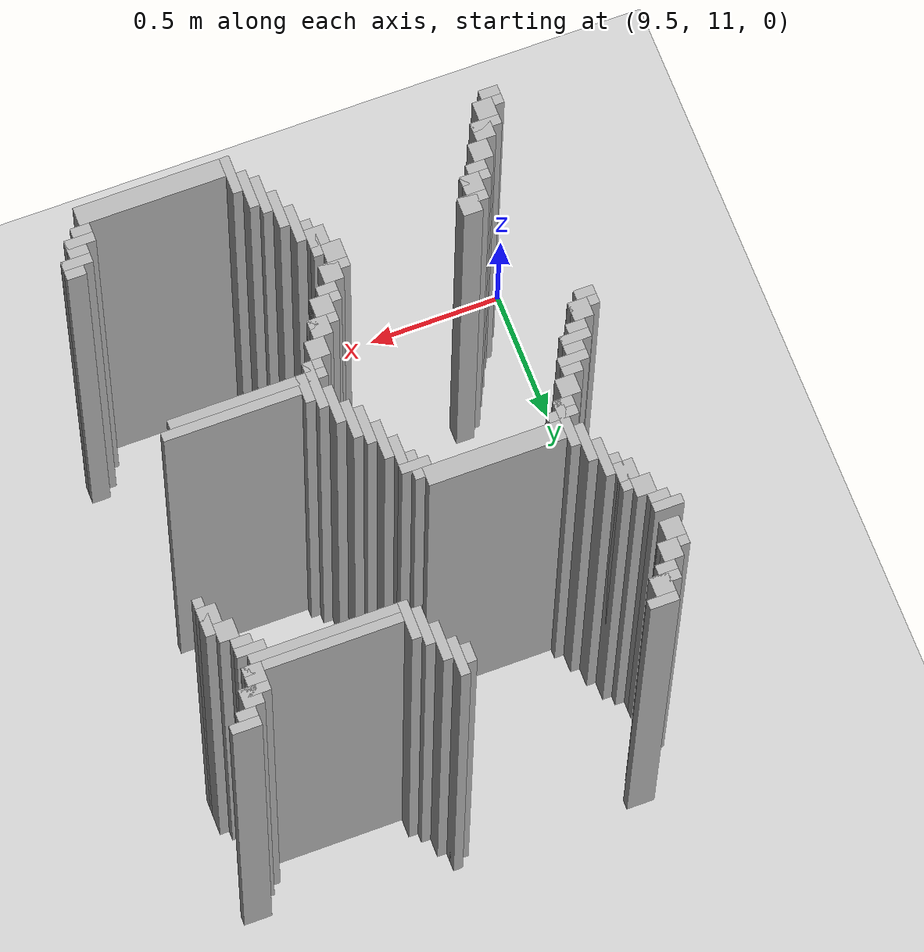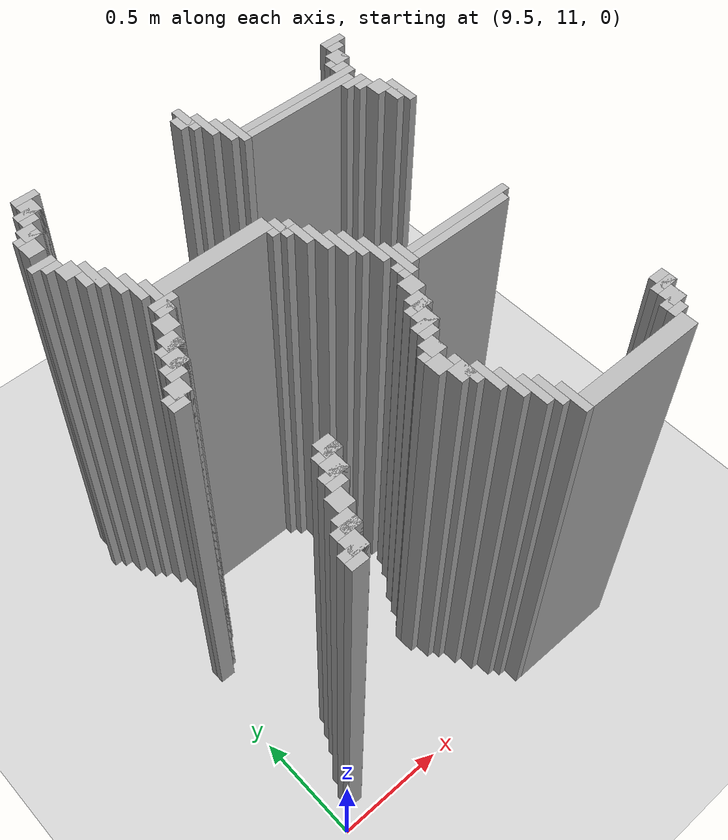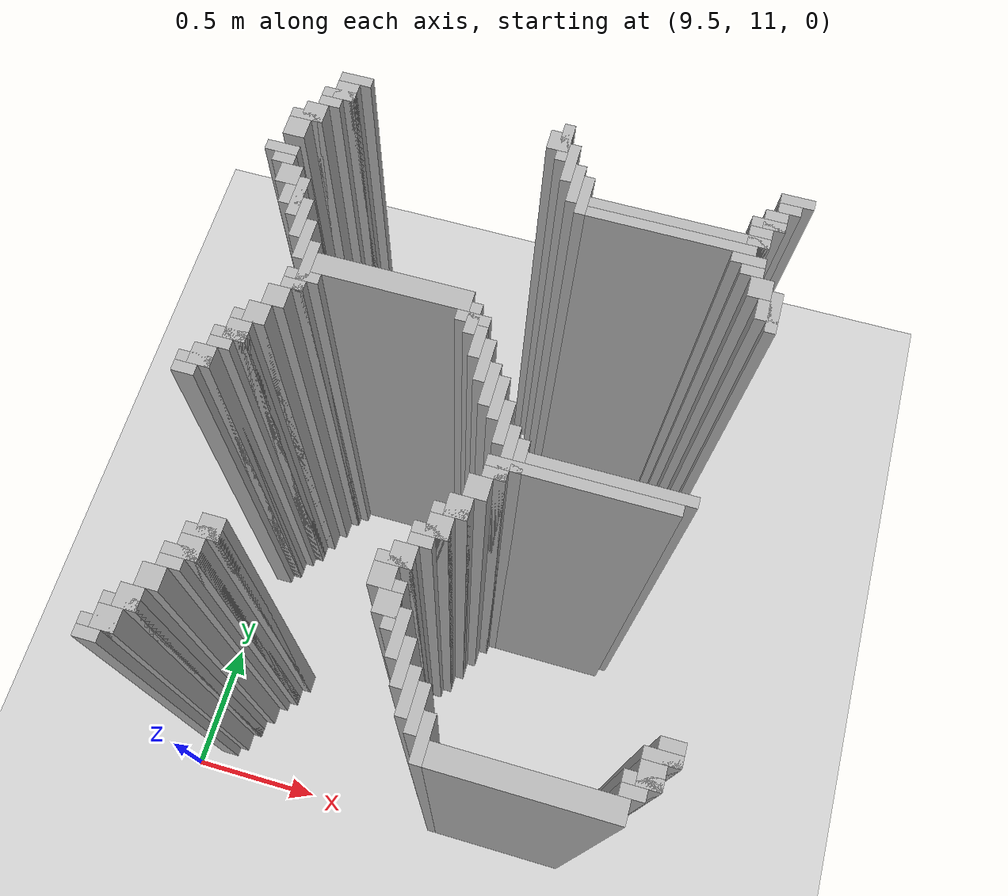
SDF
<sdf version="1.6">
 <world name="slam_world">
  <model name="ground_plane">
   <static>true</static>
   <link name="link">
    <collision name="collision">
     <geometry><plane><normal>0 0 1</normal><size>100 100</size></plane></geometry>
    </collision>
    <visual name="visual">
     <geometry><plane><normal>0 0 1</normal><size>100 100</size></plane></geometry>
     <material>
      <ambient>0.8 0.8 0.8 1</ambient>
      <diffuse>0.8 0.8 0.8 1</diffuse>
      <specular>0.8 0.8 0.8 1</specular>
     </material>
    </visual>
   </link>
  </model>
  <model name="wall_1473">
   <static>true</static>
   <pose>9.72737819025522 12.998839907192576 1.0 0 0 0</pose>
   <link name="link">
    <collision name="collision">
     <geometry><box><size>0.10440835266821345 0.03480278422273782 2.0</size></box></geometry>
    </collision>
    <visual name="visual">
     <geometry><box><size>0.10440835266821345 0.03480278422273782 2.0</size></box></geometry>
     <material><ambient>0.5 0.5 0.5 1</ambient><diffuse>0.7 0.7 0.7 1</diffuse></material>
    </visual>
   </link>
  </model>
  <model name="wall_1474">
   <static>true</static>
   <pose>10.423433874709977 12.946635730858468 1.0 0 0 0</pose>
   <link name="link">
    <collision name="collision">
     <geometry><box><size>0.03480278422273782 0.13921113689095127 2.0</size></box></geometry>
    </collision>
    <visual name="visual">
     <geometry><box><size>0.03480278422273782 0.13921113689095127 2.0</size></box></geometry>
     <material><ambient>0.5 0.5 0.5 1</ambient><diffuse>0.7 0.7 0.7 1</diffuse></material>
    </visual>
   </link>
  </model>
  <model name="wall_1489">
   <static>true</static>
   <pose>9.70997679814385 12.946635730858468 1.0 0 0 0</pose>
   <link name="link">
    <collision name="collision">
     <geometry><box><size>0.06960556844547564 0.06960556844547564 2.0</size></box></geometry>
    </collision>
    <visual name="visual">
     <geometry><box><size>0.06960556844547564 0.06960556844547564 2.0</size></box></geometry>
     <material><ambient>0.5 0.5 0.5 1</ambient><diffuse>0.7 0.7 0.7 1</diffuse></material>
    </visual>
   </link>
  </model>
  <model name="wall_1490">
   <static>true</static>
   <pose>10.406032482598608 12.946635730858468 1.0 0 0 0</pose>
   <link name="link">
    <collision name="collision">
     <geometry><box><size>0.06960556844547564 0.06960556844547564 2.0</size></box></geometry>
    </collision>
    <visual name="visual">
     <geometry><box><size>0.06960556844547564 0.06960556844547564 2.0</size></box></geometry>
     <material><ambient>0.5 0.5 0.5 1</ambient><diffuse>0.7 0.7 0.7 1</diffuse></material>
    </visual>
   </link>
  </model>
  <model name="wall_1505">
   <static>true</static>
   <pose>9.692575406032482 12.929234338747099 1.0 0 0 0</pose>
   <link name="link">
    <collision name="collision">
     <geometry><box><size>0.10440835266821345 0.03480278422273782 2.0</size></box></geometry>
    </collision>
    <visual name="visual">
     <geometry><box><size>0.10440835266821345 0.03480278422273782 2.0</size></box></geometry>
     <material><ambient>0.5 0.5 0.5 1</ambient><diffuse>0.7 0.7 0.7 1</diffuse></material>
    </visual>
   </link>
  </model>
  <model name="wall_1506">
   <static>true</static>
   <pose>10.458236658932714 12.877030162412993 1.0 0 0 0</pose>
   <link name="link">
    <collision name="collision">
     <geometry><box><size>0.03480278422273782 0.13921113689095127 2.0</size></box></geometry>
    </collision>
    <visual name="visual">
     <geometry><box><size>0.03480278422273782 0.13921113689095127 2.0</size></box></geometry>
     <material><ambient>0.5 0.5 0.5 1</ambient><diffuse>0.7 0.7 0.7 1</diffuse></material>
    </visual>
   </link>
  </model>
  <model name="wall_1507">
   <static>true</static>
   <pose>11.154292343387471 12.929234338747099 1.0 0 0 0</pose>
   <link name="link">
    <collision name="collision">
     <geometry><box><size>0.10440835266821345 0.03480278422273782 2.0</size></box></geometry>
    </collision>
    <visual name="visual">
     <geometry><box><size>0.10440835266821345 0.03480278422273782 2.0</size></box></geometry>
     <material><ambient>0.5 0.5 0.5 1</ambient><diffuse>0.7 0.7 0.7 1</diffuse></material>
    </visual>
   </link>
  </model>
  <model name="wall_1517">
   <static>true</static>
   <pose>9.675174013921113 12.894431554524362 1.0 0 0 0</pose>
   <link name="link">
    <collision name="collision">
     <geometry><box><size>0.06960556844547564 0.03480278422273782 2.0</size></box></geometry>
    </collision>
    <visual name="visual">
     <geometry><box><size>0.06960556844547564 0.03480278422273782 2.0</size></box></geometry>
     <material><ambient>0.5 0.5 0.5 1</ambient><diffuse>0.7 0.7 0.7 1</diffuse></material>
    </visual>
   </link>
  </model>
  <model name="wall_1518">
   <static>true</static>
   <pose>11.1368909512761 12.894431554524362 1.0 0 0 0</pose>
   <link name="link">
    <collision name="collision">
     <geometry><box><size>0.06960556844547564 0.03480278422273782 2.0</size></box></geometry>
    </collision>
    <visual name="visual">
     <geometry><box><size>0.06960556844547564 0.03480278422273782 2.0</size></box></geometry>
     <material><ambient>0.5 0.5 0.5 1</ambient><diffuse>0.7 0.7 0.7 1</diffuse></material>
    </visual>
   </link>
  </model>
  <model name="wall_1530">
   <static>true</static>
   <pose>9.640371229698376 12.842227378190255 1.0 0 0 0</pose>
   <link name="link">
    <collision name="collision">
     <geometry><box><size>0.06960556844547564 0.06960556844547564 2.0</size></box></geometry>
    </collision>
    <visual name="visual">
     <geometry><box><size>0.06960556844547564 0.06960556844547564 2.0</size></box></geometry>
     <material><ambient>0.5 0.5 0.5 1</ambient><diffuse>0.7 0.7 0.7 1</diffuse></material>
    </visual>
   </link>
  </model>
  <model name="wall_1531">
   <static>true</static>
   <pose>10.493039443155451 12.807424593967516 1.0 0 0 0</pose>
   <link name="link">
    <collision name="collision">
     <geometry><box><size>0.03480278422273782 0.13921113689095127 2.0</size></box></geometry>
    </collision>
    <visual name="visual">
     <geometry><box><size>0.03480278422273782 0.13921113689095127 2.0</size></box></geometry>
     <material><ambient>0.5 0.5 0.5 1</ambient><diffuse>0.7 0.7 0.7 1</diffuse></material>
    </visual>
   </link>
  </model>
  <model name="wall_1532">
   <static>true</static>
   <pose>11.102088167053363 12.842227378190255 1.0 0 0 0</pose>
   <link name="link">
    <collision name="collision">
     <geometry><box><size>0.06960556844547564 0.06960556844547564 2.0</size></box></geometry>
    </collision>
    <visual name="visual">
     <geometry><box><size>0.06960556844547564 0.06960556844547564 2.0</size></box></geometry>
     <material><ambient>0.5 0.5 0.5 1</ambient><diffuse>0.7 0.7 0.7 1</diffuse></material>
    </visual>
   </link>
  </model>
  <model name="wall_1546">
   <static>true</static>
   <pose>9.622969837587007 12.824825986078885 1.0 0 0 0</pose>
   <link name="link">
    <collision name="collision">
     <geometry><box><size>0.10440835266821345 0.03480278422273782 2.0</size></box></geometry>
    </collision>
    <visual name="visual">
     <geometry><box><size>0.10440835266821345 0.03480278422273782 2.0</size></box></geometry>
     <material><ambient>0.5 0.5 0.5 1</ambient><diffuse>0.7 0.7 0.7 1</diffuse></material>
    </visual>
   </link>
  </model>
  <model name="wall_1547">
   <static>true</static>
   <pose>10.52784222737819 12.772621809744779 1.0 0 0 0</pose>
   <link name="link">
    <collision name="collision">
     <geometry><box><size>0.03480278422273782 0.13921113689095127 2.0</size></box></geometry>
    </collision>
    <visual name="visual">
     <geometry><box><size>0.03480278422273782 0.13921113689095127 2.0</size></box></geometry>
     <material><ambient>0.5 0.5 0.5 1</ambient><diffuse>0.7 0.7 0.7 1</diffuse></material>
    </visual>
   </link>
  </model>
  <model name="wall_1548">
   <static>true</static>
   <pose>11.084686774941995 12.824825986078885 1.0 0 0 0</pose>
   <link name="link">
    <collision name="collision">
     <geometry><box><size>0.10440835266821345 0.03480278422273782 2.0</size></box></geometry>
    </collision>
    <visual name="visual">
     <geometry><box><size>0.10440835266821345 0.03480278422273782 2.0</size></box></geometry>
     <material><ambient>0.5 0.5 0.5 1</ambient><diffuse>0.7 0.7 0.7 1</diffuse></material>
    </visual>
   </link>
  </model>
  <model name="wall_1558">
   <static>true</static>
   <pose>9.605568445475638 12.772621809744779 1.0 0 0 0</pose>
   <link name="link">
    <collision name="collision">
     <geometry><box><size>0.06960556844547564 0.06960556844547564 2.0</size></box></geometry>
    </collision>
    <visual name="visual">
     <geometry><box><size>0.06960556844547564 0.06960556844547564 2.0</size></box></geometry>
     <material><ambient>0.5 0.5 0.5 1</ambient><diffuse>0.7 0.7 0.7 1</diffuse></material>
    </visual>
   </link>
  </model>
  <model name="wall_1559">
   <static>true</static>
   <pose>11.067285382830626 12.772621809744779 1.0 0 0 0</pose>
   <link name="link">
    <collision name="collision">
     <geometry><box><size>0.06960556844547564 0.06960556844547564 2.0</size></box></geometry>
    </collision>
    <visual name="visual">
     <geometry><box><size>0.06960556844547564 0.06960556844547564 2.0</size></box></geometry>
     <material><ambient>0.5 0.5 0.5 1</ambient><diffuse>0.7 0.7 0.7 1</diffuse></material>
    </visual>
   </link>
  </model>
  <model name="wall_1571">
   <static>true</static>
   <pose>10.82366589327146 12.75522041763341 1.0 0 0 0</pose>
   <link name="link">
    <collision name="collision">
     <geometry><box><size>0.5568445475638051 0.03480278422273782 2.0</size></box></geometry>
    </collision>
    <visual name="visual">
     <geometry><box><size>0.5568445475638051 0.03480278422273782 2.0</size></box></geometry>
     <material><ambient>0.5 0.5 0.5 1</ambient><diffuse>0.7 0.7 0.7 1</diffuse></material>
    </visual>
   </link>
  </model>
  <model name="wall_1582">
   <static>true</static>
   <pose>10.806264501160092 12.720417633410673 1.0 0 0 0</pose>
   <link name="link">
    <collision name="collision">
     <geometry><box><size>0.5220417633410672 0.03480278422273782 2.0</size></box></geometry>
    </collision>
    <visual name="visual">
     <geometry><box><size>0.5220417633410672 0.03480278422273782 2.0</size></box></geometry>
     <material><ambient>0.5 0.5 0.5 1</ambient><diffuse>0.7 0.7 0.7 1</diffuse></material>
    </visual>
   </link>
  </model>
  <model name="wall_1593">
   <static>true</static>
   <pose>9.588167053364268 12.685614849187935 1.0 0 0 0</pose>
   <link name="link">
    <collision name="collision">
     <geometry><box><size>0.10440835266821345 0.03480278422273782 2.0</size></box></geometry>
    </collision>
    <visual name="visual">
     <geometry><box><size>0.10440835266821345 0.03480278422273782 2.0</size></box></geometry>
     <material><ambient>0.5 0.5 0.5 1</ambient><diffuse>0.7 0.7 0.7 1</diffuse></material>
    </visual>
   </link>
  </model>
  <model name="wall_1594">
   <static>true</static>
   <pose>11.049883990719257 12.685614849187935 1.0 0 0 0</pose>
   <link name="link">
    <collision name="collision">
     <geometry><box><size>0.10440835266821345 0.03480278422273782 2.0</size></box></geometry>
    </collision>
    <visual name="visual">
     <geometry><box><size>0.10440835266821345 0.03480278422273782 2.0</size></box></geometry>
     <material><ambient>0.5 0.5 0.5 1</ambient><diffuse>0.7 0.7 0.7 1</diffuse></material>
    </visual>
   </link>
  </model>
  <model name="wall_1605">
   <static>true</static>
   <pose>9.605568445475638 12.650812064965196 1.0 0 0 0</pose>
   <link name="link">
    <collision name="collision">
     <geometry><box><size>0.06960556844547564 0.03480278422273782 2.0</size></box></geometry>
    </collision>
    <visual name="visual">
     <geometry><box><size>0.06960556844547564 0.03480278422273782 2.0</size></box></geometry>
     <material><ambient>0.5 0.5 0.5 1</ambient><diffuse>0.7 0.7 0.7 1</diffuse></material>
    </visual>
   </link>
  </model>
  <model name="wall_1606">
   <static>true</static>
   <pose>11.067285382830626 12.650812064965196 1.0 0 0 0</pose>
   <link name="link">
    <collision name="collision">
     <geometry><box><size>0.06960556844547564 0.03480278422273782 2.0</size></box></geometry>
    </collision>
    <visual name="visual">
     <geometry><box><size>0.06960556844547564 0.03480278422273782 2.0</size></box></geometry>
     <material><ambient>0.5 0.5 0.5 1</ambient><diffuse>0.7 0.7 0.7 1</diffuse></material>
    </visual>
   </link>
  </model>
  <model name="wall_1617">
   <static>true</static>
   <pose>9.640371229698376 12.59860788863109 1.0 0 0 0</pose>
   <link name="link">
    <collision name="collision">
     <geometry><box><size>0.06960556844547564 0.06960556844547564 2.0</size></box></geometry>
    </collision>
    <visual name="visual">
     <geometry><box><size>0.06960556844547564 0.06960556844547564 2.0</size></box></geometry>
     <material><ambient>0.5 0.5 0.5 1</ambient><diffuse>0.7 0.7 0.7 1</diffuse></material>
    </visual>
   </link>
  </model>
  <model name="wall_1618">
   <static>true</static>
   <pose>11.102088167053363 12.59860788863109 1.0 0 0 0</pose>
   <link name="link">
    <collision name="collision">
     <geometry><box><size>0.06960556844547564 0.06960556844547564 2.0</size></box></geometry>
    </collision>
    <visual name="visual">
     <geometry><box><size>0.06960556844547564 0.06960556844547564 2.0</size></box></geometry>
     <material><ambient>0.5 0.5 0.5 1</ambient><diffuse>0.7 0.7 0.7 1</diffuse></material>
    </visual>
   </link>
  </model>
  <model name="wall_1630">
   <static>true</static>
   <pose>9.692575406032482 12.529002320185615 1.0 0 0 0</pose>
   <link name="link">
    <collision name="collision">
     <geometry><box><size>0.03480278422273782 0.13921113689095127 2.0</size></box></geometry>
    </collision>
    <visual name="visual">
     <geometry><box><size>0.03480278422273782 0.13921113689095127 2.0</size></box></geometry>
     <material><ambient>0.5 0.5 0.5 1</ambient><diffuse>0.7 0.7 0.7 1</diffuse></material>
    </visual>
   </link>
  </model>
  <model name="wall_1631">
   <static>true</static>
   <pose>11.154292343387471 12.529002320185615 1.0 0 0 0</pose>
   <link name="link">
    <collision name="collision">
     <geometry><box><size>0.03480278422273782 0.13921113689095127 2.0</size></box></geometry>
    </collision>
    <visual name="visual">
     <geometry><box><size>0.03480278422273782 0.13921113689095127 2.0</size></box></geometry>
     <material><ambient>0.5 0.5 0.5 1</ambient><diffuse>0.7 0.7 0.7 1</diffuse></material>
    </visual>
   </link>
  </model>
  <model name="wall_1641">
   <static>true</static>
   <pose>9.675174013921113 12.529002320185615 1.0 0 0 0</pose>
   <link name="link">
    <collision name="collision">
     <geometry><box><size>0.06960556844547564 0.06960556844547564 2.0</size></box></geometry>
    </collision>
    <visual name="visual">
     <geometry><box><size>0.06960556844547564 0.06960556844547564 2.0</size></box></geometry>
     <material><ambient>0.5 0.5 0.5 1</ambient><diffuse>0.7 0.7 0.7 1</diffuse></material>
    </visual>
   </link>
  </model>
  <model name="wall_1642">
   <static>true</static>
   <pose>11.1368909512761 12.529002320185615 1.0 0 0 0</pose>
   <link name="link">
    <collision name="collision">
     <geometry><box><size>0.06960556844547564 0.06960556844547564 2.0</size></box></geometry>
    </collision>
    <visual name="visual">
     <geometry><box><size>0.06960556844547564 0.06960556844547564 2.0</size></box></geometry>
     <material><ambient>0.5 0.5 0.5 1</ambient><diffuse>0.7 0.7 0.7 1</diffuse></material>
    </visual>
   </link>
  </model>
  <model name="wall_1654">
   <static>true</static>
   <pose>9.72737819025522 12.459396751740138 1.0 0 0 0</pose>
   <link name="link">
    <collision name="collision">
     <geometry><box><size>0.03480278422273782 0.13921113689095127 2.0</size></box></geometry>
    </collision>
    <visual name="visual">
     <geometry><box><size>0.03480278422273782 0.13921113689095127 2.0</size></box></geometry>
     <material><ambient>0.5 0.5 0.5 1</ambient><diffuse>0.7 0.7 0.7 1</diffuse></material>
    </visual>
   </link>
  </model>
  <model name="wall_1675">
   <static>true</static>
   <pose>9.762180974477959 12.389791183294664 1.0 0 0 0</pose>
   <link name="link">
    <collision name="collision">
     <geometry><box><size>0.03480278422273782 0.13921113689095127 2.0</size></box></geometry>
    </collision>
    <visual name="visual">
     <geometry><box><size>0.03480278422273782 0.13921113689095127 2.0</size></box></geometry>
     <material><ambient>0.5 0.5 0.5 1</ambient><diffuse>0.7 0.7 0.7 1</diffuse></material>
    </visual>
   </link>
  </model>
  <model name="wall_1688">
   <static>true</static>
   <pose>9.796983758700696 12.302784222737818 1.0 0 0 0</pose>
   <link name="link">
    <collision name="collision">
     <geometry><box><size>0.03480278422273782 0.17401392111368907 2.0</size></box></geometry>
    </collision>
    <visual name="visual">
     <geometry><box><size>0.03480278422273782 0.17401392111368907 2.0</size></box></geometry>
     <material><ambient>0.5 0.5 0.5 1</ambient><diffuse>0.7 0.7 0.7 1</diffuse></material>
    </visual>
   </link>
  </model>
  <model name="wall_1701">
   <static>true</static>
   <pose>10.058004640371228 12.320185614849187 1.0 0 0 0</pose>
   <link name="link">
    <collision name="collision">
     <geometry><box><size>0.4872389791183295 0.06960556844547564 2.0</size></box></geometry>
    </collision>
    <visual name="visual">
     <geometry><box><size>0.4872389791183295 0.06960556844547564 2.0</size></box></geometry>
     <material><ambient>0.5 0.5 0.5 1</ambient><diffuse>0.7 0.7 0.7 1</diffuse></material>
    </visual>
   </link>
  </model>
  <model name="wall_1713">
   <static>true</static>
   <pose>10.319025522041763 12.267981438515081 1.0 0 0 0</pose>
   <link name="link">
    <collision name="collision">
     <geometry><box><size>0.03480278422273782 0.10440835266821345 2.0</size></box></geometry>
    </collision>
    <visual name="visual">
     <geometry><box><size>0.03480278422273782 0.10440835266821345 2.0</size></box></geometry>
     <material><ambient>0.5 0.5 0.5 1</ambient><diffuse>0.7 0.7 0.7 1</diffuse></material>
    </visual>
   </link>
  </model>
  <model name="wall_1729">
   <static>true</static>
   <pose>9.796983758700696 12.267981438515081 1.0 0 0 0</pose>
   <link name="link">
    <collision name="collision">
     <geometry><box><size>0.10440835266821345 0.03480278422273782 2.0</size></box></geometry>
    </collision>
    <visual name="visual">
     <geometry><box><size>0.10440835266821345 0.03480278422273782 2.0</size></box></geometry>
     <material><ambient>0.5 0.5 0.5 1</ambient><diffuse>0.7 0.7 0.7 1</diffuse></material>
    </visual>
   </link>
  </model>
  <model name="wall_1730">
   <static>true</static>
   <pose>10.319025522041763 12.267981438515081 1.0 0 0 0</pose>
   <link name="link">
    <collision name="collision">
     <geometry><box><size>0.10440835266821345 0.03480278422273782 2.0</size></box></geometry>
    </collision>
    <visual name="visual">
     <geometry><box><size>0.10440835266821345 0.03480278422273782 2.0</size></box></geometry>
     <material><ambient>0.5 0.5 0.5 1</ambient><diffuse>0.7 0.7 0.7 1</diffuse></material>
    </visual>
   </link>
  </model>
  <model name="wall_1747">
   <static>true</static>
   <pose>9.779582366589327 12.233178654292344 1.0 0 0 0</pose>
   <link name="link">
    <collision name="collision">
     <geometry><box><size>0.06960556844547564 0.03480278422273782 2.0</size></box></geometry>
    </collision>
    <visual name="visual">
     <geometry><box><size>0.06960556844547564 0.03480278422273782 2.0</size></box></geometry>
     <material><ambient>0.5 0.5 0.5 1</ambient><diffuse>0.7 0.7 0.7 1</diffuse></material>
    </visual>
   </link>
  </model>
  <model name="wall_1748">
   <static>true</static>
   <pose>10.3538283062645 12.198375870069604 1.0 0 0 0</pose>
   <link name="link">
    <collision name="collision">
     <geometry><box><size>0.03480278422273782 0.10440835266821345 2.0</size></box></geometry>
    </collision>
    <visual name="visual">
     <geometry><box><size>0.03480278422273782 0.10440835266821345 2.0</size></box></geometry>
     <material><ambient>0.5 0.5 0.5 1</ambient><diffuse>0.7 0.7 0.7 1</diffuse></material>
    </visual>
   </link>
  </model>
  <model name="wall_1763">
   <static>true</static>
   <pose>9.744779582366588 12.180974477958236 1.0 0 0 0</pose>
   <link name="link">
    <collision name="collision">
     <geometry><box><size>0.06960556844547564 0.06960556844547564 2.0</size></box></geometry>
    </collision>
    <visual name="visual">
     <geometry><box><size>0.06960556844547564 0.06960556844547564 2.0</size></box></geometry>
     <material><ambient>0.5 0.5 0.5 1</ambient><diffuse>0.7 0.7 0.7 1</diffuse></material>
    </visual>
   </link>
  </model>
  <model name="wall_1764">
   <static>true</static>
   <pose>10.38863109048724 12.146171693735498 1.0 0 0 0</pose>
   <link name="link">
    <collision name="collision">
     <geometry><box><size>0.03480278422273782 0.13921113689095127 2.0</size></box></geometry>
    </collision>
    <visual name="visual">
     <geometry><box><size>0.03480278422273782 0.13921113689095127 2.0</size></box></geometry>
     <material><ambient>0.5 0.5 0.5 1</ambient><diffuse>0.7 0.7 0.7 1</diffuse></material>
    </visual>
   </link>
  </model>
  <model name="wall_1779">
   <static>true</static>
   <pose>9.70997679814385 12.11136890951276 1.0 0 0 0</pose>
   <link name="link">
    <collision name="collision">
     <geometry><box><size>0.06960556844547564 0.06960556844547564 2.0</size></box></geometry>
    </collision>
    <visual name="visual">
     <geometry><box><size>0.06960556844547564 0.06960556844547564 2.0</size></box></geometry>
     <material><ambient>0.5 0.5 0.5 1</ambient><diffuse>0.7 0.7 0.7 1</diffuse></material>
    </visual>
   </link>
  </model>
  <model name="wall_1780">
   <static>true</static>
   <pose>10.423433874709977 12.076566125290023 1.0 0 0 0</pose>
   <link name="link">
    <collision name="collision">
     <geometry><box><size>0.03480278422273782 0.13921113689095127 2.0</size></box></geometry>
    </collision>
    <visual name="visual">
     <geometry><box><size>0.03480278422273782 0.13921113689095127 2.0</size></box></geometry>
     <material><ambient>0.5 0.5 0.5 1</ambient><diffuse>0.7 0.7 0.7 1</diffuse></material>
    </visual>
   </link>
  </model>
  <model name="wall_1795">
   <static>true</static>
   <pose>9.692575406032482 12.093967517401392 1.0 0 0 0</pose>
   <link name="link">
    <collision name="collision">
     <geometry><box><size>0.10440835266821345 0.03480278422273782 2.0</size></box></geometry>
    </collision>
    <visual name="visual">
     <geometry><box><size>0.10440835266821345 0.03480278422273782 2.0</size></box></geometry>
     <material><ambient>0.5 0.5 0.5 1</ambient><diffuse>0.7 0.7 0.7 1</diffuse></material>
    </visual>
   </link>
  </model>
  <model name="wall_1796">
   <static>true</static>
   <pose>10.458236658932714 12.041763341067284 1.0 0 0 0</pose>
   <link name="link">
    <collision name="collision">
     <geometry><box><size>0.03480278422273782 0.13921113689095127 2.0</size></box></geometry>
    </collision>
    <visual name="visual">
     <geometry><box><size>0.03480278422273782 0.13921113689095127 2.0</size></box></geometry>
     <material><ambient>0.5 0.5 0.5 1</ambient><diffuse>0.7 0.7 0.7 1</diffuse></material>
    </visual>
   </link>
  </model>
  <model name="wall_1806">
   <static>true</static>
   <pose>9.675174013921113 12.041763341067284 1.0 0 0 0</pose>
   <link name="link">
    <collision name="collision">
     <geometry><box><size>0.06960556844547564 0.06960556844547564 2.0</size></box></geometry>
    </collision>
    <visual name="visual">
     <geometry><box><size>0.06960556844547564 0.06960556844547564 2.0</size></box></geometry>
     <material><ambient>0.5 0.5 0.5 1</ambient><diffuse>0.7 0.7 0.7 1</diffuse></material>
    </visual>
   </link>
  </model>
  <model name="wall_1821">
   <static>true</static>
   <pose>9.657772621809745 12.024361948955915 1.0 0 0 0</pose>
   <link name="link">
    <collision name="collision">
     <geometry><box><size>0.10440835266821345 0.03480278422273782 2.0</size></box></geometry>
    </collision>
    <visual name="visual">
     <geometry><box><size>0.10440835266821345 0.03480278422273782 2.0</size></box></geometry>
     <material><ambient>0.5 0.5 0.5 1</ambient><diffuse>0.7 0.7 0.7 1</diffuse></material>
    </visual>
   </link>
  </model>
  <model name="wall_1822">
   <static>true</static>
   <pose>10.493039443155451 11.97215777262181 1.0 0 0 0</pose>
   <link name="link">
    <collision name="collision">
     <geometry><box><size>0.03480278422273782 0.13921113689095127 2.0</size></box></geometry>
    </collision>
    <visual name="visual">
     <geometry><box><size>0.03480278422273782 0.13921113689095127 2.0</size></box></geometry>
     <material><ambient>0.5 0.5 0.5 1</ambient><diffuse>0.7 0.7 0.7 1</diffuse></material>
    </visual>
   </link>
  </model>
  <model name="wall_1831">
   <static>true</static>
   <pose>9.640371229698376 11.989559164733178 1.0 0 0 0</pose>
   <link name="link">
    <collision name="collision">
     <geometry><box><size>0.06960556844547564 0.03480278422273782 2.0</size></box></geometry>
    </collision>
    <visual name="visual">
     <geometry><box><size>0.06960556844547564 0.03480278422273782 2.0</size></box></geometry>
     <material><ambient>0.5 0.5 0.5 1</ambient><diffuse>0.7 0.7 0.7 1</diffuse></material>
    </visual>
   </link>
  </model>
  <model name="wall_1844">
   <static>true</static>
   <pose>9.605568445475638 11.937354988399072 1.0 0 0 0</pose>
   <link name="link">
    <collision name="collision">
     <geometry><box><size>0.06960556844547564 0.06960556844547564 2.0</size></box></geometry>
    </collision>
    <visual name="visual">
     <geometry><box><size>0.06960556844547564 0.06960556844547564 2.0</size></box></geometry>
     <material><ambient>0.5 0.5 0.5 1</ambient><diffuse>0.7 0.7 0.7 1</diffuse></material>
    </visual>
   </link>
  </model>
  <model name="wall_1845">
   <static>true</static>
   <pose>10.52784222737819 11.885150812064964 1.0 0 0 0</pose>
   <link name="link">
    <collision name="collision">
     <geometry><box><size>0.03480278422273782 0.17401392111368907 2.0</size></box></geometry>
    </collision>
    <visual name="visual">
     <geometry><box><size>0.03480278422273782 0.17401392111368907 2.0</size></box></geometry>
     <material><ambient>0.5 0.5 0.5 1</ambient><diffuse>0.7 0.7 0.7 1</diffuse></material>
    </visual>
   </link>
  </model>
  <model name="wall_1860">
   <static>true</static>
   <pose>9.588167053364268 11.919953596287703 1.0 0 0 0</pose>
   <link name="link">
    <collision name="collision">
     <geometry><box><size>0.10440835266821345 0.03480278422273782 2.0</size></box></geometry>
    </collision>
    <visual name="visual">
     <geometry><box><size>0.10440835266821345 0.03480278422273782 2.0</size></box></geometry>
     <material><ambient>0.5 0.5 0.5 1</ambient><diffuse>0.7 0.7 0.7 1</diffuse></material>
    </visual>
   </link>
  </model>
  <model name="wall_1861">
   <static>true</static>
   <pose>10.562645011600928 11.885150812064964 1.0 0 0 0</pose>
   <link name="link">
    <collision name="collision">
     <geometry><box><size>0.03480278422273782 0.10440835266821345 2.0</size></box></geometry>
    </collision>
    <visual name="visual">
     <geometry><box><size>0.03480278422273782 0.10440835266821345 2.0</size></box></geometry>
     <material><ambient>0.5 0.5 0.5 1</ambient><diffuse>0.7 0.7 0.7 1</diffuse></material>
    </visual>
   </link>
  </model>
  <model name="wall_1872">
   <static>true</static>
   <pose>9.5707656612529 11.885150812064964 1.0 0 0 0</pose>
   <link name="link">
    <collision name="collision">
     <geometry><box><size>0.06960556844547564 0.03480278422273782 2.0</size></box></geometry>
    </collision>
    <visual name="visual">
     <geometry><box><size>0.06960556844547564 0.03480278422273782 2.0</size></box></geometry>
     <material><ambient>0.5 0.5 0.5 1</ambient><diffuse>0.7 0.7 0.7 1</diffuse></material>
    </visual>
   </link>
  </model>
  <model name="wall_1873">
   <static>true</static>
   <pose>10.82366589327146 11.885150812064964 1.0 0 0 0</pose>
   <link name="link">
    <collision name="collision">
     <geometry><box><size>0.4872389791183295 0.03480278422273782 2.0</size></box></geometry>
    </collision>
    <visual name="visual">
     <geometry><box><size>0.4872389791183295 0.03480278422273782 2.0</size></box></geometry>
     <material><ambient>0.5 0.5 0.5 1</ambient><diffuse>0.7 0.7 0.7 1</diffuse></material>
    </visual>
   </link>
  </model>
  <model name="wall_1888">
   <static>true</static>
   <pose>10.754060324825986 11.850348027842227 1.0 0 0 0</pose>
   <link name="link">
    <collision name="collision">
     <geometry><box><size>0.5568445475638051 0.03480278422273782 2.0</size></box></geometry>
    </collision>
    <visual name="visual">
     <geometry><box><size>0.5568445475638051 0.03480278422273782 2.0</size></box></geometry>
     <material><ambient>0.5 0.5 0.5 1</ambient><diffuse>0.7 0.7 0.7 1</diffuse></material>
    </visual>
   </link>
  </model>
  <model name="wall_1904">
   <static>true</static>
   <pose>10.51044083526682 11.81554524361949 1.0 0 0 0</pose>
   <link name="link">
    <collision name="collision">
     <geometry><box><size>0.06960556844547564 0.03480278422273782 2.0</size></box></geometry>
    </collision>
    <visual name="visual">
     <geometry><box><size>0.06960556844547564 0.03480278422273782 2.0</size></box></geometry>
     <material><ambient>0.5 0.5 0.5 1</ambient><diffuse>0.7 0.7 0.7 1</diffuse></material>
    </visual>
   </link>
  </model>
  <model name="wall_1920">
   <static>true</static>
   <pose>10.475638051044083 11.763341067285383 1.0 0 0 0</pose>
   <link name="link">
    <collision name="collision">
     <geometry><box><size>0.06960556844547564 0.06960556844547564 2.0</size></box></geometry>
    </collision>
    <visual name="visual">
     <geometry><box><size>0.06960556844547564 0.06960556844547564 2.0</size></box></geometry>
     <material><ambient>0.5 0.5 0.5 1</ambient><diffuse>0.7 0.7 0.7 1</diffuse></material>
    </visual>
   </link>
  </model>
  <model name="wall_1936">
   <static>true</static>
   <pose>10.440835266821345 11.693735498839906 1.0 0 0 0</pose>
   <link name="link">
    <collision name="collision">
     <geometry><box><size>0.06960556844547564 0.06960556844547564 2.0</size></box></geometry>
    </collision>
    <visual name="visual">
     <geometry><box><size>0.06960556844547564 0.06960556844547564 2.0</size></box></geometry>
     <material><ambient>0.5 0.5 0.5 1</ambient><diffuse>0.7 0.7 0.7 1</diffuse></material>
    </visual>
   </link>
  </model>
  <model name="wall_1952">
   <static>true</static>
   <pose>10.423433874709977 11.676334106728538 1.0 0 0 0</pose>
   <link name="link">
    <collision name="collision">
     <geometry><box><size>0.10440835266821345 0.03480278422273782 2.0</size></box></geometry>
    </collision>
    <visual name="visual">
     <geometry><box><size>0.10440835266821345 0.03480278422273782 2.0</size></box></geometry>
     <material><ambient>0.5 0.5 0.5 1</ambient><diffuse>0.7 0.7 0.7 1</diffuse></material>
    </visual>
   </link>
  </model>
  <model name="wall_1963">
   <static>true</static>
   <pose>10.406032482598608 11.624129930394432 1.0 0 0 0</pose>
   <link name="link">
    <collision name="collision">
     <geometry><box><size>0.06960556844547564 0.06960556844547564 2.0</size></box></geometry>
    </collision>
    <visual name="visual">
     <geometry><box><size>0.06960556844547564 0.06960556844547564 2.0</size></box></geometry>
     <material><ambient>0.5 0.5 0.5 1</ambient><diffuse>0.7 0.7 0.7 1</diffuse></material>
    </visual>
   </link>
  </model>
  <model name="wall_1977">
   <static>true</static>
   <pose>10.38863109048724 11.606728538283063 1.0 0 0 0</pose>
   <link name="link">
    <collision name="collision">
     <geometry><box><size>0.10440835266821345 0.03480278422273782 2.0</size></box></geometry>
    </collision>
    <visual name="visual">
     <geometry><box><size>0.10440835266821345 0.03480278422273782 2.0</size></box></geometry>
     <material><ambient>0.5 0.5 0.5 1</ambient><diffuse>0.7 0.7 0.7 1</diffuse></material>
    </visual>
   </link>
  </model>
  <model name="wall_1988">
   <static>true</static>
   <pose>10.37122969837587 11.571925754060324 1.0 0 0 0</pose>
   <link name="link">
    <collision name="collision">
     <geometry><box><size>0.06960556844547564 0.03480278422273782 2.0</size></box></geometry>
    </collision>
    <visual name="visual">
     <geometry><box><size>0.06960556844547564 0.03480278422273782 2.0</size></box></geometry>
     <material><ambient>0.5 0.5 0.5 1</ambient><diffuse>0.7 0.7 0.7 1</diffuse></material>
    </visual>
   </link>
  </model>
  <model name="wall_2002">
   <static>true</static>
   <pose>10.336426914153131 11.519721577726218 1.0 0 0 0</pose>
   <link name="link">
    <collision name="collision">
     <geometry><box><size>0.06960556844547564 0.06960556844547564 2.0</size></box></geometry>
    </collision>
    <visual name="visual">
     <geometry><box><size>0.06960556844547564 0.06960556844547564 2.0</size></box></geometry>
     <material><ambient>0.5 0.5 0.5 1</ambient><diffuse>0.7 0.7 0.7 1</diffuse></material>
    </visual>
   </link>
  </model>
  <model name="wall_2017">
   <static>true</static>
   <pose>10.319025522041763 11.502320185614849 1.0 0 0 0</pose>
   <link name="link">
    <collision name="collision">
     <geometry><box><size>0.10440835266821345 0.03480278422273782 2.0</size></box></geometry>
    </collision>
    <visual name="visual">
     <geometry><box><size>0.10440835266821345 0.03480278422273782 2.0</size></box></geometry>
     <material><ambient>0.5 0.5 0.5 1</ambient><diffuse>0.7 0.7 0.7 1</diffuse></material>
    </visual>
   </link>
  </model>
  <model name="wall_2029">
   <static>true</static>
   <pose>9.814385150812065 11.450116009280743 1.0 0 0 0</pose>
   <link name="link">
    <collision name="collision">
     <geometry><box><size>0.06960556844547564 0.06960556844547564 2.0</size></box></geometry>
    </collision>
    <visual name="visual">
     <geometry><box><size>0.06960556844547564 0.06960556844547564 2.0</size></box></geometry>
     <material><ambient>0.5 0.5 0.5 1</ambient><diffuse>0.7 0.7 0.7 1</diffuse></material>
    </visual>
   </link>
  </model>
  <model name="wall_2030">
   <static>true</static>
   <pose>10.301624129930394 11.450116009280743 1.0 0 0 0</pose>
   <link name="link">
    <collision name="collision">
     <geometry><box><size>0.06960556844547564 0.06960556844547564 2.0</size></box></geometry>
    </collision>
    <visual name="visual">
     <geometry><box><size>0.06960556844547564 0.06960556844547564 2.0</size></box></geometry>
     <material><ambient>0.5 0.5 0.5 1</ambient><diffuse>0.7 0.7 0.7 1</diffuse></material>
    </visual>
   </link>
  </model>
  <model name="wall_2043">
   <static>true</static>
   <pose>9.796983758700696 11.432714617169372 1.0 0 0 0</pose>
   <link name="link">
    <collision name="collision">
     <geometry><box><size>0.10440835266821345 0.03480278422273782 2.0</size></box></geometry>
    </collision>
    <visual name="visual">
     <geometry><box><size>0.10440835266821345 0.03480278422273782 2.0</size></box></geometry>
     <material><ambient>0.5 0.5 0.5 1</ambient><diffuse>0.7 0.7 0.7 1</diffuse></material>
    </visual>
   </link>
  </model>
  <model name="wall_2044">
   <static>true</static>
   <pose>10.3538283062645 11.380510440835266 1.0 0 0 0</pose>
   <link name="link">
    <collision name="collision">
     <geometry><box><size>0.03480278422273782 0.13921113689095127 2.0</size></box></geometry>
    </collision>
    <visual name="visual">
     <geometry><box><size>0.03480278422273782 0.13921113689095127 2.0</size></box></geometry>
     <material><ambient>0.5 0.5 0.5 1</ambient><diffuse>0.7 0.7 0.7 1</diffuse></material>
    </visual>
   </link>
  </model>
  <model name="wall_2060">
   <static>true</static>
   <pose>9.779582366589327 11.380510440835266 1.0 0 0 0</pose>
   <link name="link">
    <collision name="collision">
     <geometry><box><size>0.06960556844547564 0.06960556844547564 2.0</size></box></geometry>
    </collision>
    <visual name="visual">
     <geometry><box><size>0.06960556844547564 0.06960556844547564 2.0</size></box></geometry>
     <material><ambient>0.5 0.5 0.5 1</ambient><diffuse>0.7 0.7 0.7 1</diffuse></material>
    </visual>
   </link>
  </model>
  <model name="wall_2061">
   <static>true</static>
   <pose>10.336426914153131 11.380510440835266 1.0 0 0 0</pose>
   <link name="link">
    <collision name="collision">
     <geometry><box><size>0.06960556844547564 0.06960556844547564 2.0</size></box></geometry>
    </collision>
    <visual name="visual">
     <geometry><box><size>0.06960556844547564 0.06960556844547564 2.0</size></box></geometry>
     <material><ambient>0.5 0.5 0.5 1</ambient><diffuse>0.7 0.7 0.7 1</diffuse></material>
    </visual>
   </link>
  </model>
  <model name="wall_2077">
   <static>true</static>
   <pose>9.762180974477959 11.363109048723897 1.0 0 0 0</pose>
   <link name="link">
    <collision name="collision">
     <geometry><box><size>0.10440835266821345 0.03480278422273782 2.0</size></box></geometry>
    </collision>
    <visual name="visual">
     <geometry><box><size>0.10440835266821345 0.03480278422273782 2.0</size></box></geometry>
     <material><ambient>0.5 0.5 0.5 1</ambient><diffuse>0.7 0.7 0.7 1</diffuse></material>
    </visual>
   </link>
  </model>
  <model name="wall_2078">
   <static>true</static>
   <pose>10.38863109048724 11.310904872389791 1.0 0 0 0</pose>
   <link name="link">
    <collision name="collision">
     <geometry><box><size>0.03480278422273782 0.13921113689095127 2.0</size></box></geometry>
    </collision>
    <visual name="visual">
     <geometry><box><size>0.03480278422273782 0.13921113689095127 2.0</size></box></geometry>
     <material><ambient>0.5 0.5 0.5 1</ambient><diffuse>0.7 0.7 0.7 1</diffuse></material>
    </visual>
   </link>
  </model>
  <model name="wall_2088">
   <static>true</static>
   <pose>9.744779582366588 11.32830626450116 1.0 0 0 0</pose>
   <link name="link">
    <collision name="collision">
     <geometry><box><size>0.06960556844547564 0.03480278422273782 2.0</size></box></geometry>
    </collision>
    <visual name="visual">
     <geometry><box><size>0.06960556844547564 0.03480278422273782 2.0</size></box></geometry>
     <material><ambient>0.5 0.5 0.5 1</ambient><diffuse>0.7 0.7 0.7 1</diffuse></material>
    </visual>
   </link>
  </model>
  <model name="wall_2102">
   <static>true</static>
   <pose>9.70997679814385 11.276102088167052 1.0 0 0 0</pose>
   <link name="link">
    <collision name="collision">
     <geometry><box><size>0.06960556844547564 0.06960556844547564 2.0</size></box></geometry>
    </collision>
    <visual name="visual">
     <geometry><box><size>0.06960556844547564 0.06960556844547564 2.0</size></box></geometry>
     <material><ambient>0.5 0.5 0.5 1</ambient><diffuse>0.7 0.7 0.7 1</diffuse></material>
    </visual>
   </link>
  </model>
  <model name="wall_2103">
   <static>true</static>
   <pose>10.423433874709977 11.241299303944315 1.0 0 0 0</pose>
   <link name="link">
    <collision name="collision">
     <geometry><box><size>0.03480278422273782 0.13921113689095127 2.0</size></box></geometry>
    </collision>
    <visual name="visual">
     <geometry><box><size>0.03480278422273782 0.13921113689095127 2.0</size></box></geometry>
     <material><ambient>0.5 0.5 0.5 1</ambient><diffuse>0.7 0.7 0.7 1</diffuse></material>
    </visual>
   </link>
  </model>
  <model name="wall_2119">
   <static>true</static>
   <pose>9.675174013921113 11.206496519721577 1.0 0 0 0</pose>
   <link name="link">
    <collision name="collision">
     <geometry><box><size>0.06960556844547564 0.06960556844547564 2.0</size></box></geometry>
    </collision>
    <visual name="visual">
     <geometry><box><size>0.06960556844547564 0.06960556844547564 2.0</size></box></geometry>
     <material><ambient>0.5 0.5 0.5 1</ambient><diffuse>0.7 0.7 0.7 1</diffuse></material>
    </visual>
   </link>
  </model>
  <model name="wall_2120">
   <static>true</static>
   <pose>10.458236658932714 11.17169373549884 1.0 0 0 0</pose>
   <link name="link">
    <collision name="collision">
     <geometry><box><size>0.03480278422273782 0.13921113689095127 2.0</size></box></geometry>
    </collision>
    <visual name="visual">
     <geometry><box><size>0.03480278422273782 0.13921113689095127 2.0</size></box></geometry>
     <material><ambient>0.5 0.5 0.5 1</ambient><diffuse>0.7 0.7 0.7 1</diffuse></material>
    </visual>
   </link>
  </model>
  <model name="wall_2121">
   <static>true</static>
   <pose>11.1368909512761 11.206496519721577 1.0 0 0 0</pose>
   <link name="link">
    <collision name="collision">
     <geometry><box><size>0.06960556844547564 0.06960556844547564 2.0</size></box></geometry>
    </collision>
    <visual name="visual">
     <geometry><box><size>0.06960556844547564 0.06960556844547564 2.0</size></box></geometry>
     <material><ambient>0.5 0.5 0.5 1</ambient><diffuse>0.7 0.7 0.7 1</diffuse></material>
    </visual>
   </link>
  </model>
  <model name="wall_2136">
   <static>true</static>
   <pose>9.657772621809745 11.189095127610209 1.0 0 0 0</pose>
   <link name="link">
    <collision name="collision">
     <geometry><box><size>0.10440835266821345 0.03480278422273782 2.0</size></box></geometry>
    </collision>
    <visual name="visual">
     <geometry><box><size>0.10440835266821345 0.03480278422273782 2.0</size></box></geometry>
     <material><ambient>0.5 0.5 0.5 1</ambient><diffuse>0.7 0.7 0.7 1</diffuse></material>
    </visual>
   </link>
  </model>
  <model name="wall_2137">
   <static>true</static>
   <pose>10.493039443155451 11.1368909512761 1.0 0 0 0</pose>
   <link name="link">
    <collision name="collision">
     <geometry><box><size>0.03480278422273782 0.13921113689095127 2.0</size></box></geometry>
    </collision>
    <visual name="visual">
     <geometry><box><size>0.03480278422273782 0.13921113689095127 2.0</size></box></geometry>
     <material><ambient>0.5 0.5 0.5 1</ambient><diffuse>0.7 0.7 0.7 1</diffuse></material>
    </visual>
   </link>
  </model>
  <model name="wall_2138">
   <static>true</static>
   <pose>11.119489559164732 11.189095127610209 1.0 0 0 0</pose>
   <link name="link">
    <collision name="collision">
     <geometry><box><size>0.10440835266821345 0.03480278422273782 2.0</size></box></geometry>
    </collision>
    <visual name="visual">
     <geometry><box><size>0.10440835266821345 0.03480278422273782 2.0</size></box></geometry>
     <material><ambient>0.5 0.5 0.5 1</ambient><diffuse>0.7 0.7 0.7 1</diffuse></material>
    </visual>
   </link>
  </model>
  <model name="wall_2146">
   <static>true</static>
   <pose>9.640371229698376 11.1368909512761 1.0 0 0 0</pose>
   <link name="link">
    <collision name="collision">
     <geometry><box><size>0.06960556844547564 0.06960556844547564 2.0</size></box></geometry>
    </collision>
    <visual name="visual">
     <geometry><box><size>0.06960556844547564 0.06960556844547564 2.0</size></box></geometry>
     <material><ambient>0.5 0.5 0.5 1</ambient><diffuse>0.7 0.7 0.7 1</diffuse></material>
    </visual>
   </link>
  </model>
  <model name="wall_2147">
   <static>true</static>
   <pose>11.102088167053363 11.1368909512761 1.0 0 0 0</pose>
   <link name="link">
    <collision name="collision">
     <geometry><box><size>0.06960556844547564 0.06960556844547564 2.0</size></box></geometry>
    </collision>
    <visual name="visual">
     <geometry><box><size>0.06960556844547564 0.06960556844547564 2.0</size></box></geometry>
     <material><ambient>0.5 0.5 0.5 1</ambient><diffuse>0.7 0.7 0.7 1</diffuse></material>
    </visual>
   </link>
  </model>
  <model name="wall_2160">
   <static>true</static>
   <pose>9.622969837587007 11.119489559164732 1.0 0 0 0</pose>
   <link name="link">
    <collision name="collision">
     <geometry><box><size>0.10440835266821345 0.03480278422273782 2.0</size></box></geometry>
    </collision>
    <visual name="visual">
     <geometry><box><size>0.10440835266821345 0.03480278422273782 2.0</size></box></geometry>
     <material><ambient>0.5 0.5 0.5 1</ambient><diffuse>0.7 0.7 0.7 1</diffuse></material>
    </visual>
   </link>
  </model>
  <model name="wall_2161">
   <static>true</static>
   <pose>10.52784222737819 11.067285382830626 1.0 0 0 0</pose>
   <link name="link">
    <collision name="collision">
     <geometry><box><size>0.03480278422273782 0.13921113689095127 2.0</size></box></geometry>
    </collision>
    <visual name="visual">
     <geometry><box><size>0.03480278422273782 0.13921113689095127 2.0</size></box></geometry>
     <material><ambient>0.5 0.5 0.5 1</ambient><diffuse>0.7 0.7 0.7 1</diffuse></material>
    </visual>
   </link>
  </model>
  <model name="wall_2162">
   <static>true</static>
   <pose>11.084686774941995 11.119489559164732 1.0 0 0 0</pose>
   <link name="link">
    <collision name="collision">
     <geometry><box><size>0.10440835266821345 0.03480278422273782 2.0</size></box></geometry>
    </collision>
    <visual name="visual">
     <geometry><box><size>0.10440835266821345 0.03480278422273782 2.0</size></box></geometry>
     <material><ambient>0.5 0.5 0.5 1</ambient><diffuse>0.7 0.7 0.7 1</diffuse></material>
    </visual>
   </link>
  </model>
  <model name="wall_2170">
   <static>true</static>
   <pose>9.605568445475638 11.084686774941995 1.0 0 0 0</pose>
   <link name="link">
    <collision name="collision">
     <geometry><box><size>0.06960556844547564 0.03480278422273782 2.0</size></box></geometry>
    </collision>
    <visual name="visual">
     <geometry><box><size>0.06960556844547564 0.03480278422273782 2.0</size></box></geometry>
     <material><ambient>0.5 0.5 0.5 1</ambient><diffuse>0.7 0.7 0.7 1</diffuse></material>
    </visual>
   </link>
  </model>
  <model name="wall_2171">
   <static>true</static>
   <pose>11.067285382830626 11.084686774941995 1.0 0 0 0</pose>
   <link name="link">
    <collision name="collision">
     <geometry><box><size>0.06960556844547564 0.03480278422273782 2.0</size></box></geometry>
    </collision>
    <visual name="visual">
     <geometry><box><size>0.06960556844547564 0.03480278422273782 2.0</size></box></geometry>
     <material><ambient>0.5 0.5 0.5 1</ambient><diffuse>0.7 0.7 0.7 1</diffuse></material>
    </visual>
   </link>
  </model>
  <model name="wall_2182">
   <static>true</static>
   <pose>10.806264501160092 11.032482598607888 1.0 0 0 0</pose>
   <link name="link">
    <collision name="collision">
     <geometry><box><size>0.5220417633410672 0.06960556844547564 2.0</size></box></geometry>
    </collision>
    <visual name="visual">
     <geometry><box><size>0.5220417633410672 0.06960556844547564 2.0</size></box></geometry>
     <material><ambient>0.5 0.5 0.5 1</ambient><diffuse>0.7 0.7 0.7 1</diffuse></material>
    </visual>
   </link>
  </model>
 </world>
</sdf>
